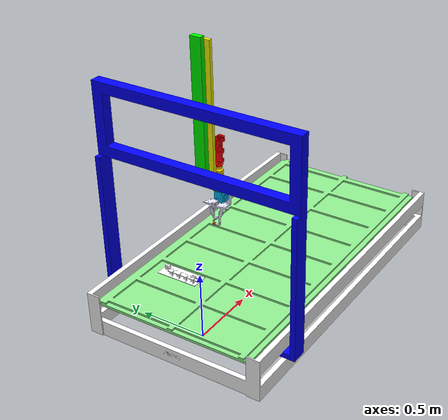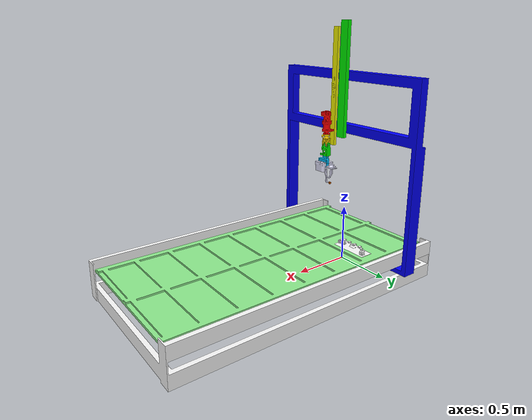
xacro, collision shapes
<?xml version="1.0"?>
<robot xmlns:xacro="http://wiki.ros.org/xacro"
       name="gantry_robot" >

  <xacro:arg name="transmission_hw_interface" default="hardware_interface/PositionJointInterface"/>

  <!-- common stuff -->
  <xacro:include filename="$(find gantry_description)/urdf/common.gazebo.xacro" />

  <!-- ur5 -->
  <xacro:include filename="$(find gantry_description)/urdf/gantry.urdf.xacro" />

  <!-- conveyor robot -->
  <xacro:include filename="$(find gantry_description)/urdf/conveyor_robot.urdf" />

  <!-- arm -->
  <xacro:gantry_robot prefix="" joint_limited="true"
    gantryX_lower_limit= "0.0" gantryX_upper_limit="1.75"
    gantryY_lower_limit="-0.5" gantryY_upper_limit="0.5"
    gantryZ_lower_limit="0.0"  gantryZ_upper_limit="0.625"
    gantryYAW_lower_limit="-3.1415"  gantryYAW_upper_limit="3.1415"
    gantryPITCH_lower_limit="-1.5707"  gantryPITCH_upper_limit="1.5707"
    gantryROLL_lower_limit="-3.1415"  gantryROLL_upper_limit="3.1415"
    transmission_hw_interface="$(arg transmission_hw_interface)"
  />
    <!-- gantryROLL_lower_limit="-3.1415"  gantryROLL_upper_limit="3.1415" -->

</robot>

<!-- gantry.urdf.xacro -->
<robot name="gantry_robot" xmlns:xacro="http://wiki.ros.org/xacro">

  <xacro:include filename="$(find gantry_description)/urdf/gantry.transmission.xacro" />
  <xacro:include filename="$(find gantry_description)/urdf/gantry.gazebo.xacro" />

  <xacro:macro name="gantry_robot" params="prefix joint_limited
    gantryX_lower_limit:=0    gantryX_upper_limit:=1.75
    gantryY_lower_limit:=-0.5    gantryY_upper_limit:=0.5
    gantryZ_lower_limit:=0    gantryZ_upper_limit:=0.625
    gantryYAW_lower_limit:=-3.1415    gantryYAW_upper_limit:=3.1415
    gantryPITCH_lower_limit:=-1.5707    gantryPITCH_upper_limit:=1.5707
    gantryROLL_lower_limit:=-3.1415    gantryROLL_upper_limit:=3.1415
    transmission_hw_interface:=hardware_interface/PositionJointInterface
    safety_limits:=false safety_pos_margin:=0.15
    safety_k_position:=20">

    <xacro:gantry_transmission prefix="${prefix}" hw_interface="${transmission_hw_interface}" />
    <xacro:gantry_gazebo prefix="${prefix}" />

    <link name="base_link">
        <!-- fixed structure -->
        <inertial>
            <mass value="1.0" />
            <inertia ixx="1.0" ixy="0.0" ixz="0.0" iyy="1.0" iyz="0.0" izz="1.0" />
        </inertial>

        <visual>
            <geometry>
                <mesh filename="package://gantry_description/meshes/Simulation_Base.STL" />
            </geometry>
            <origin rpy="0 0 0" xyz="0.875 0 0" />
            <material name="white">
                <color rgba="1 1 1 1" />
            </material>
        </visual>
        <collision>
            <geometry>
                <mesh filename="package://gantry_description/meshes/Simulation_Base.STL" />
            </geometry>
            <origin rpy="0 0 0" xyz="0.875 0 0" />
        </collision>
    </link>

    <joint name="gantryX" type="prismatic">
        <parent link="base_link" />
        <child link="gantryX_link" />
        <limit effort="1" lower="0" upper="1.75" velocity="0.5" />
        <axis xyz="1 0 0" />
        <origin rpy="0 0 0" xyz="0 0 0.14288" />
    </joint>

    <link name="gantryX_link">
        <inertial>
            <mass value="1.0" />
            <inertia ixx="1.0" ixy="0.0" ixz="0.0" iyy="1.0" iyz="0.0" izz="1.0" />
        </inertial>
        <visual>
            <geometry>
                <mesh filename="package://gantry_description/meshes/Simulation_X_Axis.STL" />
            </geometry>
            <origin rpy="0 0 0" xyz="0 0 0.5461" />
            <material name="blue">
                <color rgba="0 0 1 1" />
            </material>
        </visual>
        <collision>
            <geometry>
                <mesh filename="package://gantry_description/meshes/Simulation_X_Axis.STL" />
            </geometry>
            <origin rpy="0 0 0" xyz="0 0 0.5461" />
        </collision>
    </link>

    <joint name="gantryY" type="prismatic">
        <parent link="gantryX_link" />
        <child link="gantryY_link" />
        <limit effort="1" lower="-0.5" upper="0.5" velocity="0.5" />
        <axis xyz="0 1 0" />
    <origin rpy="0 0 0" xyz="0.077 0 1.49793"/>
    </joint>

    <link name="gantryY_link">
        <inertial>
            <mass value="1.0" />
            <inertia ixx="1.0" ixy="0.0" ixz="0.0" iyy="1.0" iyz="0.0" izz="1.0" />
        </inertial>
        <visual>
            <geometry>
                <mesh filename="package://gantry_description/meshes/Simulation_Y_Axis.STL" />
            </geometry>
            <origin rpy="0 0 0" xyz="0 0 0" />
            <material name="green">
                <color rgba="0 1 0 1" />
            </material>
        </visual>
        <collision>
            <geometry>
                <mesh filename="package://gantry_description/meshes/Simulation_Y_Axis.STL" />
            </geometry>
            <origin rpy="0 0 0" xyz="0 0 0" />
        </collision>
    </link>

    <joint name="gantryZ" type="prismatic">
        <parent link="gantryY_link" />
        <child link="gantryZ_link" />
        <limit effort="1" lower="0.0" upper="0.625" velocity="0.5" />
        <axis xyz="0 0 -1" />
        <origin rpy="0 0 0" xyz="0.09843 0 -0.5334" />  <!-- xyz="0.09843 0 -0.5334"  -->
    </joint>

    <link name="gantryZ_link">
        <inertial>
            <mass value="0.001" />
            <inertia ixx="0.001" ixy="0.0" ixz="0.0" iyy="0.001" iyz="0.0" izz="0.001" />
        </inertial>
        <visual>
            <geometry>
                <mesh filename="package://gantry_description/meshes/Simulation_Z_Axis.STL" />
            </geometry>
            <origin rpy="0 1.5707 0" xyz="0 0 0" />
            <material name="yellow">
                <color rgba="1 1 0 1" />
            </material>
        </visual>
        <collision>
            <geometry>
                <mesh filename="package://gantry_description/meshes/Simulation_Z_Axis.STL" />
            </geometry>
            <origin rpy="0 1.5707 0" xyz="0 0 0" />
        </collision>
    </link>

    <!--  YAW ADDITION START -->
  <joint name="gantryYAW_Motor" type="fixed">
    <parent link="gantryZ_link"/>
    <child link="gantryYAW_Motor_link"/>
    <origin rpy="0 1.5707 0" xyz="0.0754 0.0 0.1"/> <!-- "0 1.5707 0" xyz="0.0754 0.0 0.1" -->
  </joint>
  <link name="gantryYAW_Motor_link">
    <inertial>
      <mass value="0.001"/>
      <inertia ixx="0.001" ixy="0.00" ixz="0.00" iyy="0.001" iyz="0.00" izz="0.001"/>
    </inertial>
    <visual>
      <geometry>
        <mesh filename="package://gantry_description/meshes/roll_motor.STL" scale="0.001 0.001 0.001"/>
      </geometry>
      <material name="white">
        <color rgba="1 0 0 1"/>
      </material>
    </visual>
    <origin rpy="0 0 0" xyz="0 0 0"/>
    <collision>
      <geometry>
        <mesh filename="package://gantry_description/meshes/roll_motor.STL" scale="0.001 0.001 0.001"/>
      </geometry>
    </collision>
  </link>

    <joint name="gantryYAW" type="revolute">
      <parent link="gantryZ_link"/>
      <child link="gantryYAW_link"/>
    <origin rpy="0 1.5707 0" xyz="0.075 0.0 0.1"/> <!-- xyz="0.0754 0.0 0.1" -->
      <limit effort="1" lower="-3.1415" upper="3.1415" velocity="3.15"/>
    <axis xyz="1 0 0"/>
    </joint>

    <link name="gantryYAW_link">
      <inertial>
        <mass value="0.001"/>
        <inertia ixx="0.001" ixy="0.00" ixz="0.00" iyy="0.001" iyz="0.00" izz="0.001"/>
      </inertial>
      <visual>

      <geometry>
        <mesh filename="package://gantry_description/meshes/roll_mini.STL" scale="0.001 0.001 0.001"/>
      </geometry>
      <material name="gold">
        <color rgba="1 0.84 0 1"/>
      </material>
      </visual>
      <origin rpy="0 0 0" xyz="0 0 0"/>
      <collision>

      <geometry>
        <mesh filename="package://gantry_description/meshes/roll_mini.STL" scale="0.001 0.001 0.001"/>
      </geometry>
      </collision>
    </link>
    <!--   YAW ADDITION END -->

    <!--  PITCH ADDITION START -->
    <joint name="gantryPITCH" type="revolute">
        <parent link="gantryYAW_link"/>
        <child link="gantryPITCH_link"/>
    <origin rpy="0 0 0" xyz="0.0859 0.0 0.0 "/>
        <limit effort="1" lower="-1.5707" upper="1.5707" velocity="3.15"/>
        <axis xyz="0 1 0"/>
    </joint>

    <link name="gantryPITCH_link">
    <inertial>
      <mass value="0.001"/>
      <inertia ixx="0.001" ixy="0.00" ixz="0.00" iyy="0.001" iyz="0.00" izz="0.001"/>
    </inertial>
    <visual>
      <geometry>
          <mesh filename="package://gantry_description/meshes/pitch.STL" scale="0.001 0.001 0.001" />
      </geometry>
      <material name="green">
        <color rgba="0 1 0 1"/>
      </material>
    </visual>
    <origin rpy="1.5707 0 0" xyz="0 0 0"/>
    <collision>
      <geometry>
          <mesh filename="package://gantry_description/meshes/pitch.STL" scale="0.001 0.001 0.001"/>
      </geometry>
    </collision>
    </link>
    <!--  PITCH ADDITION END -->

    <!--  ROLL ADDITION START -->
    <joint name="gantryROLL" type="revolute">
        <parent link="gantryPITCH_link"/>
        <child link="gantryROLL_link"/>
    <origin rpy="0 0 0" xyz="0.098 0.0 0.0"/> <!-- xyz="0.098 0.0 0.0 -->
        <limit effort="1" lower="-3.1415" upper="3.1415" velocity="3.15"/>
    <axis xyz="1 0 0"/>
    </joint>

    <link name="gantryROLL_link">
    <inertial>
      <mass value="0.001"/>
      <inertia ixx="0.001" ixy="0.00" ixz="0.001" iyy="1.0" iyz="0.00" izz="0.001"/>
    </inertial>
    <visual>
      <geometry>
          <mesh filename="package://gantry_description/meshes/yaw.STL" scale="0.001 0.001 0.001"/>
      </geometry>
      <material name="deep_blue">
        <color rgba="0 0.75 1 1"/>
      </material>
    </visual>
    <origin rpy="1.5707 0 0" xyz="0 0 0"/>
    <collision>
      <geometry>
          <mesh filename="package://gantry_description/meshes/yaw.STL" scale="0.001 0.001 0.001"/>
      </geometry>
    </collision>
    </link>
    <!--  ROLL ADDITION END -->

  <!--  IN-HAND ADDITION START -->
  <joint name="inhand_cam_joint" type="fixed">
    <parent link="gantryROLL_link"/>
    <child link="inhand_link"/>
    <origin rpy="0.0 0.0 0.0" xyz="0.12403 0.0294 0.05638"/>
  </joint>

  <link name="inhand_link">
    <inertial>
      <mass value="0.001"/>
      <inertia ixx="0.001" ixy="0.00" ixz="0.001" iyy="1.0" iyz="0.00" izz="0.001"/>
    </inertial>
    <visual>
      <geometry>
        <mesh filename="package://gantry_description/meshes/in-hand.STL" scale="0.001 0.001 0.001"/>
      </geometry>
      <material name="grey">
        <color rgba="0.9 0.9 1 1"/>
      </material>
    </visual>
    <origin rpy="0 0 0" xyz="0 0 0"/>
    <collision>
      <geometry>
        <mesh filename="package://gantry_description/meshes/in-hand.STL" scale="0.001 0.001 0.001"/>
      </geometry>
    </collision>
  </link>
  <!--  IN-HAND ADDITION END -->

  <!--  GRIPPER ADDITION START-->
  <joint name="gripper_joint" type="fixed">
    <parent link="gantryROLL_link"/>
    <child link="gripper_link"/>
    <origin rpy="0.0 0.0 0.0" xyz="0.08738 0.017 0.0 "/>
  </joint>

  <link name="gripper_link">
    <inertial>
      <mass value="0.001"/>
      <inertia ixx="0.001" ixy="0.00" ixz="0.001" iyy="1.0" iyz="0.00" izz="0.001"/>
    </inertial>
    <visual>
      <geometry>
        <mesh filename="package://gantry_description/meshes/gripper.STL" scale="0.001 0.001 0.001"/>
      </geometry>
      <material name="grey">
        <color rgba="0.9 0.9 1 1"/>
      </material>
    </visual>
    <origin rpy="0 0 0" xyz="0 0 0"/>
    <collision>
      <geometry>
        <mesh filename="package://gantry_description/meshes/gripper.STL" scale="0.001 0.001 0.001"/>
      </geometry>
    </collision>
  </link>
  <!--  GRIPPER ADDITION END -->

<joint name="ee_fixed_joint" type="fixed">
<parent link="gripper_link"/>
<child link="ee_link" />
<origin rpy="0.0 0.0 0.0" xyz="0.156 0.00925 -0.03188"/> <!-- xyz="0.225 0 -0.03175" 0.24 0 0 -->
</joint>

<link name="ee_link">
<origin rpy="0 0 0" xyz="0 0 0" />
    <collision>
        <geometry>
            <box size="0.015 0.015 0.015" />
        </geometry>

    </collision>
    <inertial>
        <mass value="0.001" />
  <inertia ixx="0.001" ixy="0.0" ixz="0.0" iyy="0.001" iyz="0.0" izz="0.001"/>
    </inertial>
</link>

  <!-- ROS base_link to UR 'Base' Coordinates transform -->

    <!-- Frame coincident with all-zeros TCP on UR controller -->

    <!-- base plate link definition -->
    <link name="base_plate">
     <inertial>
         <mass value="1.0" />
         <inertia ixx="1.0" ixy="0.0" ixz="0.0" iyy="1.0" iyz="0.0" izz="1.0" />
     </inertial>
     <visual>
         <geometry>
             <mesh filename="package://gantry_description/meshes/gantry_base_plate.stl" />
         </geometry>
         <origin rpy="0 0 0" xyz="-1.25 -0.6 -0.01" />
         <material name="light_green">
             <color rgba="0.56 0.93 0.56 1" />
         </material>
     </visual>
     <collision>
         <geometry>
             <mesh filename="package://gantry_description/meshes/gantry_base_plate.stl" />
         </geometry>
         <origin rpy="0 0 0" xyz="-1.25 -0.6 -0.01" />
     </collision>
    </link>

    <!-- Fixed joints to attach the base plate -->
    <joint name="base_plate_to_side" type="fixed">
     <parent link="base_link"/>
     <child link="base_plate"/>
     <origin rpy="0 0 0" xyz="0.91 0 0.255"/>
    </joint>

    <!-- Plant Pot 1 (Visual Only, No Collision, Light Green Color) -->
    <link name="plant_pot_1">
     <visual>
         <geometry>
             <mesh filename="package://gantry_description/meshes/plantpot.stl" scale="0.1 0.1 0.1"/>
         </geometry>
         <origin rpy="1.57 0 0" xyz="0.14 0.4 0"/>
         <material name="light_green">
             <color rgba="0.56 0.93 0.56 1"/>
         </material>
     </visual>
    </link>

    <joint name="plant_pot_1_joint" type="fixed">
     <parent link="base_plate"/>
     <child link="plant_pot_1"/>
     <origin rpy="0 0 0" xyz="0 0 0"/>
    </joint>

    <!-- Plant Pot 2 (Visual Only, No Collision, Light Green Color) -->
    <link name="plant_pot_2">
     <visual>
         <geometry>
             <mesh filename="package://gantry_description/meshes/plantpot.stl" scale="0.1 0.1 0.1"/>
         </geometry>
         <origin rpy="1.57 0 0" xyz="0.14 0.325 0"/>
         <material name="light_green">
             <color rgba="0.56 0.93 0.56 1"/>
         </material>
     </visual>
    </link>

    <joint name="plant_pot_2_joint" type="fixed">
     <parent link="base_plate"/>
     <child link="plant_pot_2"/>
     <origin rpy="0 0 0" xyz="0 0 0"/>
    </joint>

  </xacro:macro>
</robot>

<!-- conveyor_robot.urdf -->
<robot name="conveyor_robot">
  <material name="black">
    <color rgba="0 0 0 1"/>
  </material>
  <material name="white">
    <color rgba="1 1 1 1"/>
  </material>

  <link name="conveyor_base_link">
    <visual>
      <origin xyz="-0.7 0.32 -0.015"/>
      <geometry>
        <mesh filename="package://gantry_description/meshes/Assembly_without_slider.stl"/>
      </geometry>
      <material name="white"/>
    </visual>
    <collision>
      <origin xyz="-0.7 0.32 -0.015"/>
      <geometry>
        <mesh filename="package://gantry_description/meshes/Assembly_without_slider.stl"/>
      </geometry>
    </collision>
  </link>

  <link name="fixed_link">
    <!-- Intermediate link as a reference frame -->
  </link>

  <joint name="fixed_joint" type="fixed">
    <parent link="conveyor_base_link"/>
    <child link="fixed_link"/>
    <origin xyz="0 0 0"/>
  </joint>

  <link name="slider">
    <visual>
      <origin xyz="-0.7 0.32 0"/>
      <geometry>
        <mesh filename="package://gantry_description/meshes/slider.stl"/>
      </geometry>
      <material name="white"/>
    </visual>
    <collision>
      <origin xyz="-0.7 0.32 0"/>
      <geometry>
        <mesh filename="package://gantry_description/meshes/slider.stl"/>
      </geometry>
    </collision>
    <inertial>
      <origin xyz="-0.7 0.32 0"/>
      <mass value="0.5"/>
      <inertia ixx="0.001" ixy="0" ixz="0" iyy="0.001" iyz="0" izz="0.001"/>
    </inertial>
  </link>

  <joint name="slider_joint" type="prismatic">
    <parent link="fixed_link"/>
    <child link="slider"/>
    <origin xyz="0 -0.105 0"/>
    <axis xyz="0 1 0"/>
    <limit lower="-0.01" upper="0.19" effort="100" velocity="0.5"/>
    <dynamics damping="0.1" friction="0.2"/>
  </joint>

  <joint name="base_to_base_plate_joint" type="fixed">
    <parent link="base_plate"/>
    <child link="conveyor_base_link"/>
    <origin xyz="0 0 0.025" rpy="0 0 0"/> <!-- Adjust the z-offset to place the conveyor on the base_plate -->
  </joint>
</robot>
